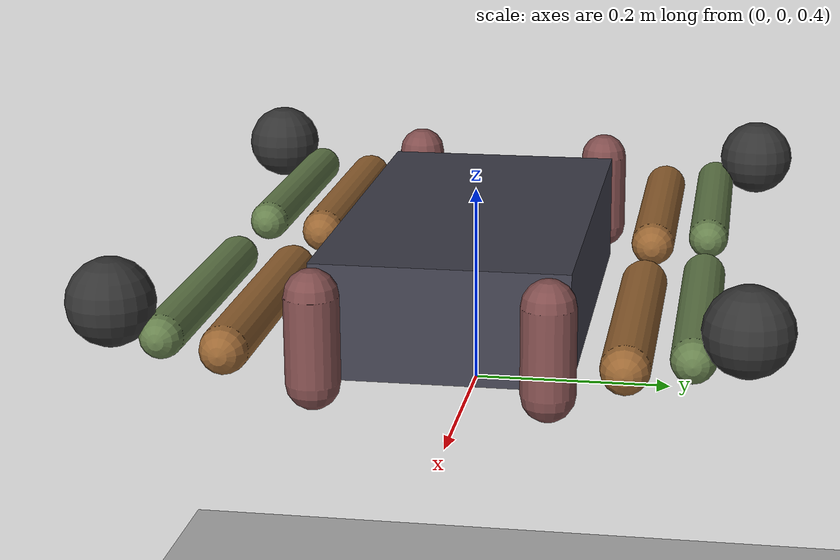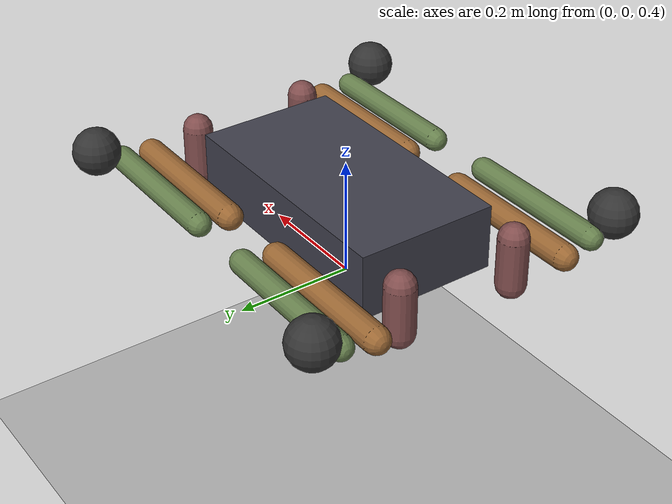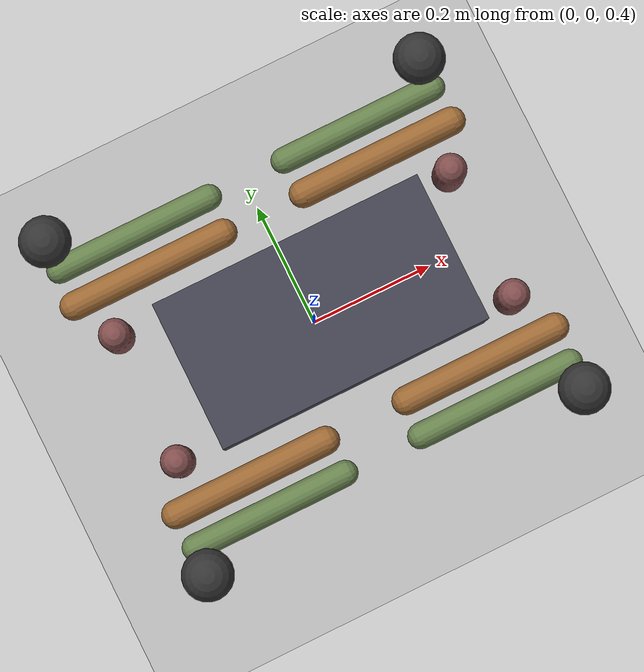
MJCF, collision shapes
<mujoco model="quadruped_gesture_test">
  <compiler angle="radian" meshdir="meshes"/>

  <option gravity="0 0 -9.81" timestep="0.002"/>

  <visual>
    <global offwidth="1280" offheight="720"/>
  </visual>

  <default>
    <joint damping="4" armature="0.01"/>
    <geom condim="3" friction="1 0.5 0.5"/>
    <position kp="200" kv="8"/>
  </default>

  <asset>
    <texture type="skybox" builtin="gradient" rgb1="0.3 0.5 0.7" rgb2="0.0 0.0 0.0" width="512" height="512"/>
    <texture name="grid" type="2d" builtin="checker" rgb1="0.8 0.8 0.8" rgb2="0.6 0.6 0.6" width="256" height="256"/>
    <material name="grid" texture="grid" texrepeat="8 8" reflectance="0.1"/>
    <!-- STL meshes from URDF export -->
    <mesh name="base_link"     file="base_link.STL"/>
    <mesh name="fr_hip"        file="fr_hip_Link.STL"/>
    <mesh name="fr_thigh"      file="fr_thigh_Link.STL"/>
    <mesh name="fr_calf"       file="fr_calf_Link.STL"/>
    <mesh name="fr_foot"       file="fr_foot_Link.STL"/>
    <mesh name="fl_hip"        file="fl_hip_Link.STL"/>
    <mesh name="fl_thigh"      file="fl_thigh_Link.STL"/>
    <mesh name="fl_calf"       file="fl_calf_Link.STL"/>
    <mesh name="fl_foot"       file="fl_foot_Link.STL"/>
    <mesh name="rr_hip"        file="rr_hip_Link.STL"/>
    <mesh name="rr_thigh"      file="rr_thigh_Link.STL"/>
    <mesh name="rr_calf"       file="rr_calf_Link.STL"/>
    <mesh name="rr_foot"       file="rr_foot_Link.STL"/>
    <mesh name="rl_hip"        file="rl_hip_Link.STL"/>
    <mesh name="rl_thigh"      file="rl_thigh_Link.STL"/>
    <mesh name="rl_calf"       file="rl_calf_Link.STL"/>
    <mesh name="rl_foot"       file="rl_foot_Link.STL"/>
  </asset>

  <worldbody>
    <light directional="true" diffuse="0.8 0.8 0.8" specular="0.3 0.3 0.3" pos="0 0 5" dir="0 0 -1"/>
    <geom type="plane" size="3 3 0.01" material="grid"/>

    <!-- Trunk: free-floating body -->
    <!-- Inertial from URDF: mass=8, pos=(0.0108, 0.0073, 0.0758) -->
    <body name="trunk" pos="0 0 0.45">
      <freejoint name="root"/>
      <inertial pos="0.0108 0.0073 0.0758" mass="8" diaginertia="0.05 0.08 0.05"/>
      <!-- Visual: real mesh (no collision) -->
      <geom type="mesh" mesh="base_link" rgba="0.25 0.25 0.3 1" contype="0" conaffinity="0"/>
      <!-- Collision: box from URDF — half-size 0.22 0.12 0.055, origin (0.01, 0, 0.08) -->
      <geom name="trunk_col" type="box" size="0.22 0.12 0.055" pos="0.01 0 0.08" rgba="0.25 0.25 0.3 0"/>

      <!-- ═══ FR (Front Right) ═══ -->
      <body name="fr_hip" pos="0.2395 -0.0646 0.0807">
        <inertial pos="0.069 -0.021 0" mass="0.5" diaginertia="0.001 0.001 0.001"/>
        <joint name="fr_hip_joint" type="hinge" axis="-1 0 0" range="-0.8 0.8"/>
        <geom type="mesh" mesh="fr_hip" rgba="0.5 0.3 0.3 1" contype="0" conaffinity="0"/>
        <!-- Collision: URDF cylinder r=0.025 l=0.08 at (0.04,-0.04,0) along Z -->
        <geom name="fr_hip_col" type="capsule" size="0.025" fromto="0.04 -0.04 -0.04  0.04 -0.04 0.04" rgba="0.5 0.3 0.3 0"/>

        <body name="fr_thigh" pos="0.078 -0.0795 0">
          <inertial pos="-0.126 -0.030 -0.009" mass="1.0" diaginertia="0.005 0.005 0.001"/>
          <joint name="fr_thigh_joint" type="hinge" axis="0 -1 0" range="-2.5 2.5"/>
          <geom type="mesh" mesh="fr_thigh" rgba="0.6 0.4 0.2 1" contype="0" conaffinity="0"/>
          <!-- Collision: URDF cylinder r=0.022 l=0.25 at (-0.125,-0.03,0) along X -->
          <geom name="fr_thigh_col" type="capsule" size="0.022" fromto="-0.25 -0.03 0  0 -0.03 0" rgba="0.6 0.4 0.2 0"/>

          <body name="fr_calf" pos="-0.2494 -0.057 -0.0172">
            <inertial pos="0.120 -0.030 0.025" mass="0.5" diaginertia="0.003 0.003 0.001"/>
            <joint name="fr_calf_joint" type="hinge" axis="0 -1 0" range="-3.0 3.0"/>
            <geom type="mesh" mesh="fr_calf" rgba="0.4 0.5 0.3 1" contype="0" conaffinity="0"/>
            <!-- Collision: URDF cylinder r=0.02 l=0.25 at (0.12,-0.03,0.025) along X -->
            <geom name="fr_calf_col" type="capsule" size="0.02" fromto="-0.005 -0.03 0.025  0.245 -0.03 0.025" rgba="0.4 0.5 0.3 0"/>

            <body name="fr_foot" pos="0.244 -0.061 0.0545">
              <inertial pos="0 -0.014 0" mass="0.3" diaginertia="0.001 0.001 0.001"/>
              <joint name="fr_foot_joint" type="hinge" axis="0 1 0" range="-0.8 0.8"/>
              <geom type="mesh" mesh="fr_foot" rgba="0.2 0.2 0.2 1" contype="0" conaffinity="0"/>
              <!-- Collision: URDF sphere r=0.04 at (0,-0.014,0) -->
              <geom name="fr_foot_col" type="sphere" size="0.04" pos="0 -0.014 0" rgba="0.2 0.2 0.2 1"/>
            </body>
          </body>
        </body>
      </body>

      <!-- ═══ FL (Front Left) ═══ -->
      <body name="fl_hip" pos="0.2395 0.0654 0.0807">
        <inertial pos="0.069 0.021 0" mass="0.5" diaginertia="0.001 0.001 0.001"/>
        <joint name="fl_hip_joint" type="hinge" axis="1 0 0" range="-0.8 0.8"/>
        <geom type="mesh" mesh="fl_hip" rgba="0.5 0.3 0.3 1" contype="0" conaffinity="0"/>
        <!-- Collision: URDF cylinder r=0.025 l=0.08 at (0.04,0.04,0) along Z -->
        <geom name="fl_hip_col" type="capsule" size="0.025" fromto="0.04 0.04 -0.04  0.04 0.04 0.04" rgba="0.5 0.3 0.3 0"/>

        <body name="fl_thigh" pos="0.078 0.0795 0">
          <inertial pos="-0.126 0.030 -0.009" mass="1.0" diaginertia="0.005 0.005 0.001"/>
          <joint name="fl_thigh_joint" type="hinge" axis="0 1 0" range="-2.5 2.5"/>
          <geom type="mesh" mesh="fl_thigh" rgba="0.6 0.4 0.2 1" contype="0" conaffinity="0"/>
          <!-- Collision: URDF cylinder r=0.022 l=0.25 at (-0.125,0.03,0) along X -->
          <geom name="fl_thigh_col" type="capsule" size="0.022" fromto="-0.25 0.03 0  0 0.03 0" rgba="0.6 0.4 0.2 0"/>

          <body name="fl_calf" pos="-0.2495 0.057 -0.0152">
            <inertial pos="0.120 0.030 0.025" mass="0.5" diaginertia="0.003 0.003 0.001"/>
            <joint name="fl_calf_joint" type="hinge" axis="0 1 0" range="-3.0 3.0"/>
            <geom type="mesh" mesh="fl_calf" rgba="0.4 0.5 0.3 1" contype="0" conaffinity="0"/>
            <!-- Collision: URDF cylinder r=0.02 l=0.25 at (0.12,0.03,0.025) along X -->
            <geom name="fl_calf_col" type="capsule" size="0.02" fromto="-0.005 0.03 0.025  0.245 0.03 0.025" rgba="0.4 0.5 0.3 0"/>

            <body name="fl_foot" pos="0.2444 0.061 0.0525">
              <inertial pos="0 0.014 0" mass="0.3" diaginertia="0.001 0.001 0.001"/>
              <joint name="fl_foot_joint" type="hinge" axis="0 -1 0" range="-0.8 0.8"/>
              <geom type="mesh" mesh="fl_foot" rgba="0.2 0.2 0.2 1" contype="0" conaffinity="0"/>
              <!-- Collision: URDF sphere r=0.04 at (0,0.014,0) -->
              <geom name="fl_foot_col" type="sphere" size="0.04" pos="0 0.014 0" rgba="0.2 0.2 0.2 1"/>
            </body>
          </body>
        </body>
      </body>

      <!-- ═══ RR (Rear Right) ═══ -->
      <body name="rr_hip" pos="-0.2395 -0.0646 0.0807">
        <inertial pos="-0.069 -0.021 0" mass="0.5" diaginertia="0.001 0.001 0.001"/>
        <joint name="rr_hip_joint" type="hinge" axis="-1 0 0" range="-0.8 0.8"/>
        <geom type="mesh" mesh="rr_hip" rgba="0.5 0.3 0.3 1" contype="0" conaffinity="0"/>
        <!-- Collision: URDF cylinder r=0.025 l=0.08 at (-0.04,-0.04,0) along Z -->
        <geom name="rr_hip_col" type="capsule" size="0.025" fromto="-0.04 -0.04 -0.04  -0.04 -0.04 0.04" rgba="0.5 0.3 0.3 0"/>

        <body name="rr_thigh" pos="-0.078 -0.0795 0">
          <inertial pos="0.126 -0.030 -0.009" mass="1.0" diaginertia="0.005 0.005 0.001"/>
          <joint name="rr_thigh_joint" type="hinge" axis="0 -1 0" range="-2.5 2.5"/>
          <geom type="mesh" mesh="rr_thigh" rgba="0.6 0.4 0.2 1" contype="0" conaffinity="0"/>
          <!-- Collision: URDF cylinder r=0.022 l=0.25 at (0.125,-0.03,0) along X -->
          <geom name="rr_thigh_col" type="capsule" size="0.022" fromto="0 -0.03 0  0.25 -0.03 0" rgba="0.6 0.4 0.2 0"/>

          <body name="rr_calf" pos="0.2495 -0.057 -0.0152">
            <inertial pos="-0.120 -0.030 0.025" mass="0.5" diaginertia="0.003 0.003 0.001"/>
            <joint name="rr_calf_joint" type="hinge" axis="0 -1 0" range="-3.0 3.0"/>
            <geom type="mesh" mesh="rr_calf" rgba="0.4 0.5 0.3 1" contype="0" conaffinity="0"/>
            <!-- Collision: URDF cylinder r=0.02 l=0.25 at (-0.12,-0.03,0.025) along X -->
            <geom name="rr_calf_col" type="capsule" size="0.02" fromto="-0.245 -0.03 0.025  0.005 -0.03 0.025" rgba="0.4 0.5 0.3 0"/>

            <body name="rr_foot" pos="-0.2444 -0.061 0.0525">
              <inertial pos="0 -0.014 0" mass="0.3" diaginertia="0.001 0.001 0.001"/>
              <joint name="rr_foot_joint" type="hinge" axis="0 1 0" range="-0.8 0.8"/>
              <geom type="mesh" mesh="rr_foot" rgba="0.2 0.2 0.2 1" contype="0" conaffinity="0"/>
              <!-- Collision: URDF sphere r=0.04 at (0,-0.014,0) -->
              <geom name="rr_foot_col" type="sphere" size="0.04" pos="0 -0.014 0" rgba="0.2 0.2 0.2 1"/>
            </body>
          </body>
        </body>
      </body>

      <!-- ═══ RL (Rear Left) ═══ -->
      <body name="rl_hip" pos="-0.2395 0.0654 0.0807">
        <inertial pos="-0.069 0.021 0" mass="0.5" diaginertia="0.001 0.001 0.001"/>
        <joint name="rl_hip_joint" type="hinge" axis="-1 0 0" range="-0.8 0.8"/>
        <geom type="mesh" mesh="rl_hip" rgba="0.5 0.3 0.3 1" contype="0" conaffinity="0"/>
        <!-- Collision: URDF cylinder r=0.025 l=0.08 at (-0.04,0.04,0) along Z -->
        <geom name="rl_hip_col" type="capsule" size="0.025" fromto="-0.04 0.04 -0.04  -0.04 0.04 0.04" rgba="0.5 0.3 0.3 0"/>

        <body name="rl_thigh" pos="-0.078 0.0795 0">
          <inertial pos="0.126 0.030 -0.009" mass="1.0" diaginertia="0.005 0.005 0.001"/>
          <joint name="rl_thigh_joint" type="hinge" axis="0 1 0" range="-2.5 2.5"/>
          <geom type="mesh" mesh="rl_thigh" rgba="0.6 0.4 0.2 1" contype="0" conaffinity="0"/>
          <!-- Collision: URDF cylinder r=0.022 l=0.25 at (0.125,0.03,0) along X -->
          <geom name="rl_thigh_col" type="capsule" size="0.022" fromto="0 0.03 0  0.25 0.03 0" rgba="0.6 0.4 0.2 0"/>

          <body name="rl_calf" pos="0.2495 0.057 -0.0152">
            <inertial pos="-0.120 0.030 0.025" mass="0.5" diaginertia="0.003 0.003 0.001"/>
            <joint name="rl_calf_joint" type="hinge" axis="0 1 0" range="-3.0 3.0"/>
            <geom type="mesh" mesh="rl_calf" rgba="0.4 0.5 0.3 1" contype="0" conaffinity="0"/>
            <!-- Collision: URDF cylinder r=0.02 l=0.25 at (-0.12,0.03,0.025) along X -->
            <geom name="rl_calf_col" type="capsule" size="0.02" fromto="-0.245 0.03 0.025  0.005 0.03 0.025" rgba="0.4 0.5 0.3 0"/>

            <body name="rl_foot" pos="-0.2444 0.061 0.0525">
              <inertial pos="0 0.014 0" mass="0.3" diaginertia="0.001 0.001 0.001"/>
              <joint name="rl_foot_joint" type="hinge" axis="0 -1 0" range="-0.8 0.8"/>
              <geom type="mesh" mesh="rl_foot" rgba="0.2 0.2 0.2 1" contype="0" conaffinity="0"/>
              <!-- Collision: URDF sphere r=0.04 at (0,0.014,0) -->
              <geom name="rl_foot_col" type="sphere" size="0.04" pos="0 0.014 0" rgba="0.2 0.2 0.2 1"/>
            </body>
          </body>
        </body>
      </body>

    </body>
  </worldbody>

  <!-- Position actuators: PD control to track target joint angles -->
  <actuator>
    <position joint="fr_hip_joint"   name="fr_hip"   ctrlrange="-0.8 0.8"/>
    <position joint="fr_thigh_joint" name="fr_thigh" ctrlrange="-2.5 2.5"/>
    <position joint="fr_calf_joint"  name="fr_calf"  ctrlrange="-3.0 3.0"/>
    <position joint="fr_foot_joint"  name="fr_foot"  ctrlrange="-0.8 0.8"/>
    <position joint="fl_hip_joint"   name="fl_hip"   ctrlrange="-0.8 0.8"/>
    <position joint="fl_thigh_joint" name="fl_thigh" ctrlrange="-2.5 2.5"/>
    <position joint="fl_calf_joint"  name="fl_calf"  ctrlrange="-3.0 3.0"/>
    <position joint="fl_foot_joint"  name="fl_foot"  ctrlrange="-0.8 0.8"/>
    <position joint="rr_hip_joint"   name="rr_hip"   ctrlrange="-0.8 0.8"/>
    <position joint="rr_thigh_joint" name="rr_thigh" ctrlrange="-2.5 2.5"/>
    <position joint="rr_calf_joint"  name="rr_calf"  ctrlrange="-3.0 3.0"/>
    <position joint="rr_foot_joint"  name="rr_foot"  ctrlrange="-0.8 0.8"/>
    <position joint="rl_hip_joint"   name="rl_hip"   ctrlrange="-0.8 0.8"/>
    <position joint="rl_thigh_joint" name="rl_thigh" ctrlrange="-2.5 2.5"/>
    <position joint="rl_calf_joint"  name="rl_calf"  ctrlrange="-3.0 3.0"/>
    <position joint="rl_foot_joint"  name="rl_foot"  ctrlrange="-0.8 0.8"/>
  </actuator>
</mujoco>
